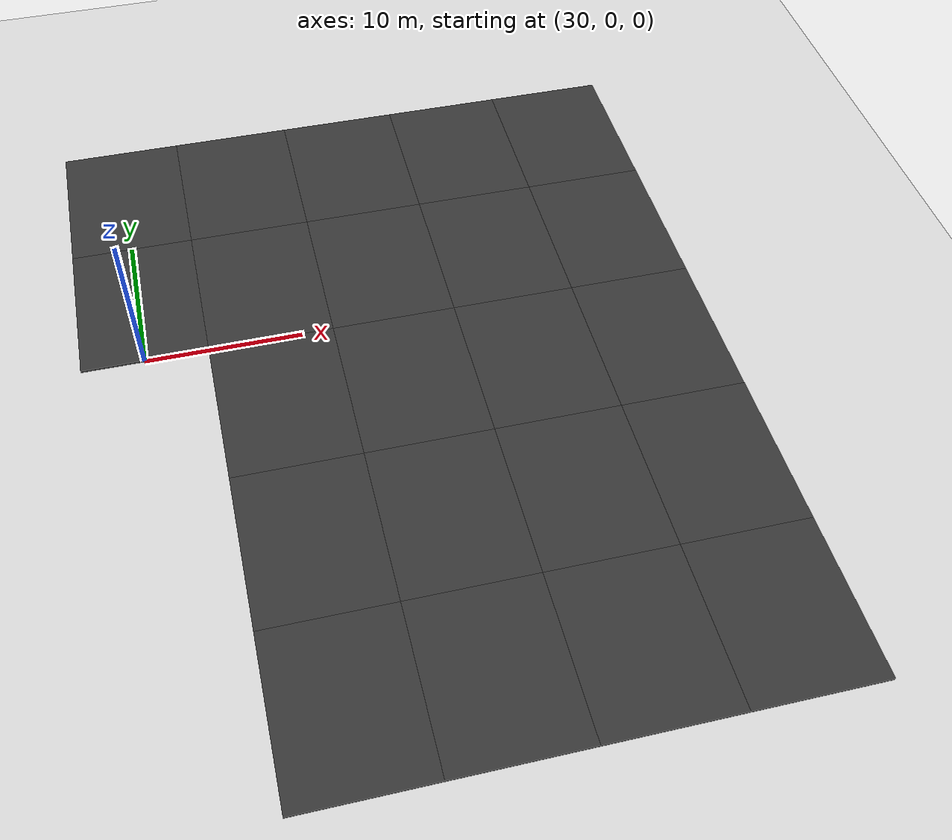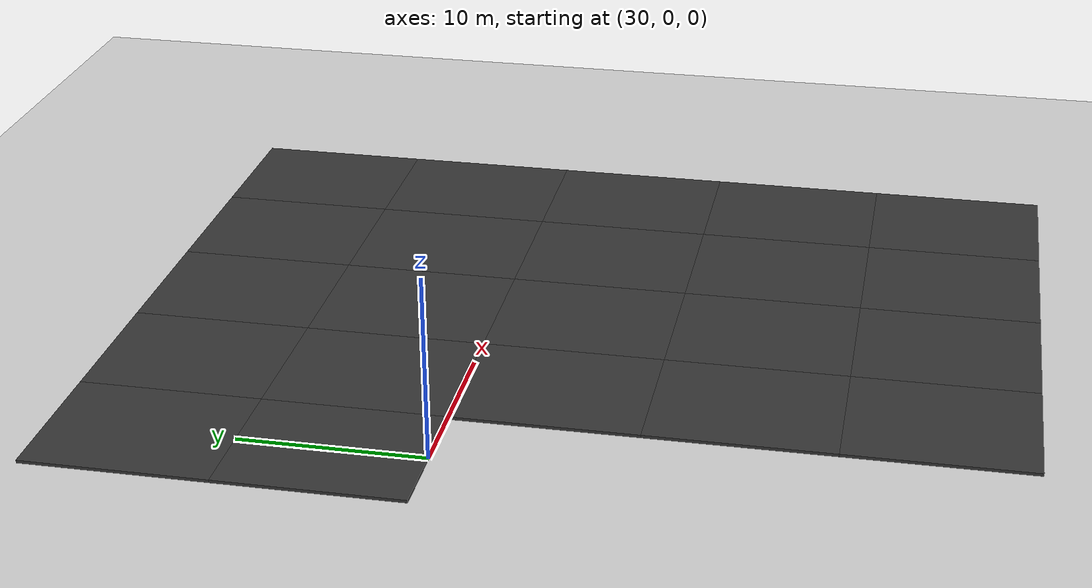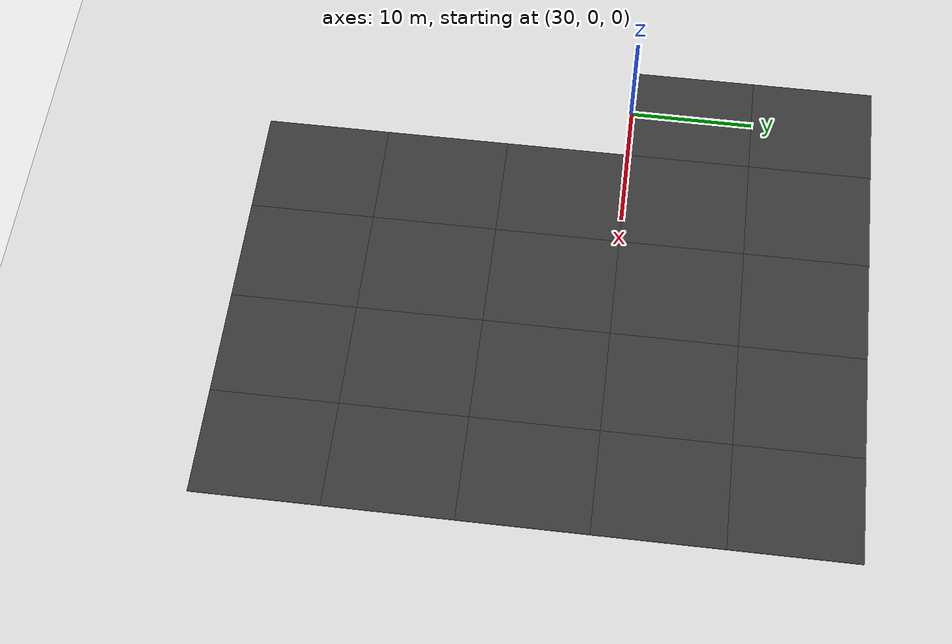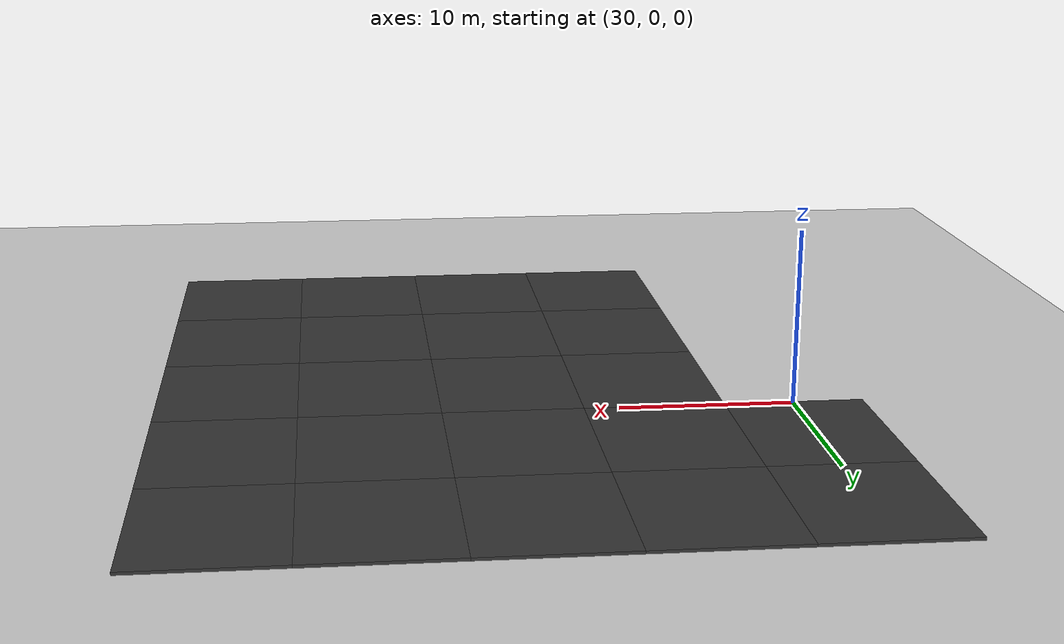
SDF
<sdf version="1.7">
 <world name="default">
  <model name="ground_plane">
   <static>1</static>
   <link name="link">
    <collision name="collision">
     <geometry><plane><normal>0 0 1</normal><size>100 100</size></plane></geometry>
     <surface>
      <contact><collide_bitmask>65535</collide_bitmask></contact>
      <friction><ode><mu>100</mu><mu2>50</mu2></ode></friction>
     </surface>
    </collision>
    <visual name="visual">
     <cast_shadows>0</cast_shadows>
     <geometry><plane><normal>0 0 1</normal><size>100 100</size></plane></geometry>
     <material>
      <script><uri>file://media/materials/scripts/gazebo.material</uri><name>Gazebo/Grey</name></script>
     </material>
    </visual>
   </link>
  </model>
  <model name="mud_box_1">
   <link name="link">
    <inertial>
     <mass>1</mass>
     <inertia><ixx>1</ixx><ixy>0</ixy><ixz>0</ixz><iyy>1</iyy><iyz>0</iyz><izz>1</izz></inertia>
    </inertial>
    <visual name="visual">
     <cast_shadows>0</cast_shadows>
     <geometry><box><size>8 10 0.2</size></box></geometry>
     <material>
      <script>
       <uri>model://mud_box/materials/scripts</uri>
       <uri>model://mud_box/materials/textures</uri>
       <name>vrc/mud</name>
      </script>
      <shader type="pixel"><normal_map>__default__</normal_map></shader>
      <ambient>0.2 0.2 0.2 1</ambient>
      <diffuse>0.2 0.2 0.2 1</diffuse>
      <specular>0.2 0.2 0.2 1</specular>
      <emissive>0 0 0 1</emissive>
     </material>
    </visual>
    <collision name="collision">
     <geometry><box><size>8 10 0.2</size></box></geometry>
     <surface>
      <friction>
       <ode><mu>1</mu><mu2>1</mu2><fdir1>0 0 0</fdir1><slip1>0</slip1><slip2>0</slip2></ode>
       <torsional>
        <coefficient>1</coefficient>
        <patch_radius>0</patch_radius>
        <surface_radius>0</surface_radius>
        <use_patch_radius>1</use_patch_radius>
        <ode><slip>0</slip></ode>
       </torsional>
      </friction>
      <bounce><restitution_coefficient>0</restitution_coefficient><threshold>1e+06</threshold></bounce>
      <contact>
       <collide_without_contact>0</collide_without_contact>
       <collide_without_contact_bitmask>1</collide_without_contact_bitmask>
       <collide_bitmask>1</collide_bitmask>
       <ode>
        <soft_cfm>0</soft_cfm>
        <soft_erp>0.2</soft_erp>
        <kp>1e+13</kp>
        <kd>1</kd>
        <max_vel>0.01</max_vel>
        <min_depth>0</min_depth>
       </ode>
       <bullet>
        <split_impulse>1</split_impulse>
        <split_impulse_penetration_threshold>-0.01</split_impulse_penetration_threshold>
        <soft_cfm>0</soft_cfm>
        <soft_erp>0.2</soft_erp>
        <kp>1e+13</kp>
        <kd>1</kd>
       </bullet>
      </contact>
     </surface>
    </collision>
   </link>
   <static>1</static>
   <pose>46 -25 0 0 -0 0</pose>
  </model>
  <model name="mud_box_2">
   <link name="link">
    <inertial>
     <mass>1</mass>
     <inertia><ixx>1</ixx><ixy>0</ixy><ixz>0</ixz><iyy>1</iyy><iyz>0</iyz><izz>1</izz></inertia>
    </inertial>
    <visual name="visual">
     <cast_shadows>0</cast_shadows>
     <geometry><box><size>8 10 0.2</size></box></geometry>
     <material>
      <script>
       <uri>model://mud_box/materials/scripts</uri>
       <uri>model://mud_box/materials/textures</uri>
       <name>vrc/mud</name>
      </script>
      <shader type="pixel"><normal_map>__default__</normal_map></shader>
      <ambient>0.2 0.2 0.2 1</ambient>
      <diffuse>0.2 0.2 0.2 1</diffuse>
      <specular>0.2 0.2 0.2 1</specular>
      <emissive>0 0 0 1</emissive>
     </material>
    </visual>
    <collision name="collision">
     <geometry><box><size>8 10 0.2</size></box></geometry>
     <surface>
      <friction>
       <ode><mu>1</mu><mu2>1</mu2><fdir1>0 0 0</fdir1><slip1>0</slip1><slip2>0</slip2></ode>
       <torsional>
        <coefficient>1</coefficient>
        <patch_radius>0</patch_radius>
        <surface_radius>0</surface_radius>
        <use_patch_radius>1</use_patch_radius>
        <ode><slip>0</slip></ode>
       </torsional>
      </friction>
      <bounce><restitution_coefficient>0</restitution_coefficient><threshold>1e+06</threshold></bounce>
      <contact>
       <collide_without_contact>0</collide_without_contact>
       <collide_without_contact_bitmask>1</collide_without_contact_bitmask>
       <collide_bitmask>1</collide_bitmask>
       <ode>
        <soft_cfm>0</soft_cfm>
        <soft_erp>0.2</soft_erp>
        <kp>1e+13</kp>
        <kd>1</kd>
        <max_vel>0.01</max_vel>
        <min_depth>0</min_depth>
       </ode>
       <bullet>
        <split_impulse>1</split_impulse>
        <split_impulse_penetration_threshold>-0.01</split_impulse_penetration_threshold>
        <soft_cfm>0</soft_cfm>
        <soft_erp>0.2</soft_erp>
        <kp>1e+13</kp>
        <kd>1</kd>
       </bullet>
      </contact>
     </surface>
    </collision>
   </link>
   <static>1</static>
   <pose>46 -15 0 0 -0 0</pose>
  </model>
  <model name="mud_box_3">
   <link name="link">
    <inertial>
     <mass>1</mass>
     <inertia><ixx>1</ixx><ixy>0</ixy><ixz>0</ixz><iyy>1</iyy><iyz>0</iyz><izz>1</izz></inertia>
    </inertial>
    <visual name="visual">
     <cast_shadows>0</cast_shadows>
     <geometry><box><size>8 10 0.2</size></box></geometry>
     <material>
      <script>
       <uri>model://mud_box/materials/scripts</uri>
       <uri>model://mud_box/materials/textures</uri>
       <name>vrc/mud</name>
      </script>
      <shader type="pixel"><normal_map>__default__</normal_map></shader>
      <ambient>0.2 0.2 0.2 1</ambient>
      <diffuse>0.2 0.2 0.2 1</diffuse>
      <specular>0.2 0.2 0.2 1</specular>
      <emissive>0 0 0 1</emissive>
     </material>
    </visual>
    <collision name="collision">
     <geometry><box><size>8 10 0.2</size></box></geometry>
     <surface>
      <friction>
       <ode><mu>1</mu><mu2>1</mu2><fdir1>0 0 0</fdir1><slip1>0</slip1><slip2>0</slip2></ode>
       <torsional>
        <coefficient>1</coefficient>
        <patch_radius>0</patch_radius>
        <surface_radius>0</surface_radius>
        <use_patch_radius>1</use_patch_radius>
        <ode><slip>0</slip></ode>
       </torsional>
      </friction>
      <bounce><restitution_coefficient>0</restitution_coefficient><threshold>1e+06</threshold></bounce>
      <contact>
       <collide_without_contact>0</collide_without_contact>
       <collide_without_contact_bitmask>1</collide_without_contact_bitmask>
       <collide_bitmask>1</collide_bitmask>
       <ode>
        <soft_cfm>0</soft_cfm>
        <soft_erp>0.2</soft_erp>
        <kp>1e+13</kp>
        <kd>1</kd>
        <max_vel>0.01</max_vel>
        <min_depth>0</min_depth>
       </ode>
       <bullet>
        <split_impulse>1</split_impulse>
        <split_impulse_penetration_threshold>-0.01</split_impulse_penetration_threshold>
        <soft_cfm>0</soft_cfm>
        <soft_erp>0.2</soft_erp>
        <kp>1e+13</kp>
        <kd>1</kd>
       </bullet>
      </contact>
     </surface>
    </collision>
   </link>
   <static>1</static>
   <pose>46 -5 0 0 -0 0</pose>
  </model>
  <model name="mud_box_6">
   <link name="link">
    <inertial>
     <mass>1</mass>
     <inertia><ixx>1</ixx><ixy>0</ixy><ixz>0</ixz><iyy>1</iyy><iyz>0</iyz><izz>1</izz></inertia>
    </inertial>
    <visual name="visual">
     <cast_shadows>0</cast_shadows>
     <geometry><box><size>8 10 0.2</size></box></geometry>
     <material>
      <script>
       <uri>model://mud_box/materials/scripts</uri>
       <uri>model://mud_box/materials/textures</uri>
       <name>vrc/mud</name>
      </script>
      <shader type="pixel"><normal_map>__default__</normal_map></shader>
      <ambient>0.2 0.2 0.2 1</ambient>
      <diffuse>0.2 0.2 0.2 1</diffuse>
      <specular>0.2 0.2 0.2 1</specular>
      <emissive>0 0 0 1</emissive>
     </material>
    </visual>
    <collision name="collision">
     <geometry><box><size>8 10 0.2</size></box></geometry>
     <surface>
      <friction>
       <ode><mu>1</mu><mu2>1</mu2><fdir1>0 0 0</fdir1><slip1>0</slip1><slip2>0</slip2></ode>
       <torsional>
        <coefficient>1</coefficient>
        <patch_radius>0</patch_radius>
        <surface_radius>0</surface_radius>
        <use_patch_radius>1</use_patch_radius>
        <ode><slip>0</slip></ode>
       </torsional>
      </friction>
      <bounce><restitution_coefficient>0</restitution_coefficient><threshold>1e+06</threshold></bounce>
      <contact>
       <collide_without_contact>0</collide_without_contact>
       <collide_without_contact_bitmask>1</collide_without_contact_bitmask>
       <collide_bitmask>1</collide_bitmask>
       <ode>
        <soft_cfm>0</soft_cfm>
        <soft_erp>0.2</soft_erp>
        <kp>1e+13</kp>
        <kd>1</kd>
        <max_vel>0.01</max_vel>
        <min_depth>0</min_depth>
       </ode>
       <bullet>
        <split_impulse>1</split_impulse>
        <split_impulse_penetration_threshold>-0.01</split_impulse_penetration_threshold>
        <soft_cfm>0</soft_cfm>
        <soft_erp>0.2</soft_erp>
        <kp>1e+13</kp>
        <kd>1</kd>
       </bullet>
      </contact>
     </surface>
    </collision>
   </link>
   <static>1</static>
   <pose>38 -25 0 0 -0 0</pose>
  </model>
  <model name="mud_box_7">
   <link name="link">
    <inertial>
     <mass>1</mass>
     <inertia><ixx>1</ixx><ixy>0</ixy><ixz>0</ixz><iyy>1</iyy><iyz>0</iyz><izz>1</izz></inertia>
    </inertial>
    <visual name="visual">
     <cast_shadows>0</cast_shadows>
     <geometry><box><size>8 10 0.2</size></box></geometry>
     <material>
      <script>
       <uri>model://mud_box/materials/scripts</uri>
       <uri>model://mud_box/materials/textures</uri>
       <name>vrc/mud</name>
      </script>
      <shader type="pixel"><normal_map>__default__</normal_map></shader>
      <ambient>0.2 0.2 0.2 1</ambient>
      <diffuse>0.2 0.2 0.2 1</diffuse>
      <specular>0.2 0.2 0.2 1</specular>
      <emissive>0 0 0 1</emissive>
     </material>
    </visual>
    <collision name="collision">
     <geometry><box><size>8 10 0.2</size></box></geometry>
     <surface>
      <friction>
       <ode><mu>1</mu><mu2>1</mu2><fdir1>0 0 0</fdir1><slip1>0</slip1><slip2>0</slip2></ode>
       <torsional>
        <coefficient>1</coefficient>
        <patch_radius>0</patch_radius>
        <surface_radius>0</surface_radius>
        <use_patch_radius>1</use_patch_radius>
        <ode><slip>0</slip></ode>
       </torsional>
      </friction>
      <bounce><restitution_coefficient>0</restitution_coefficient><threshold>1e+06</threshold></bounce>
      <contact>
       <collide_without_contact>0</collide_without_contact>
       <collide_without_contact_bitmask>1</collide_without_contact_bitmask>
       <collide_bitmask>1</collide_bitmask>
       <ode>
        <soft_cfm>0</soft_cfm>
        <soft_erp>0.2</soft_erp>
        <kp>1e+13</kp>
        <kd>1</kd>
        <max_vel>0.01</max_vel>
        <min_depth>0</min_depth>
       </ode>
       <bullet>
        <split_impulse>1</split_impulse>
        <split_impulse_penetration_threshold>-0.01</split_impulse_penetration_threshold>
        <soft_cfm>0</soft_cfm>
        <soft_erp>0.2</soft_erp>
        <kp>1e+13</kp>
        <kd>1</kd>
       </bullet>
      </contact>
     </surface>
    </collision>
   </link>
   <static>1</static>
   <pose>38 -15 0 0 -0 0</pose>
  </model>
  <model name="mud_box_8">
   <link name="link">
    <inertial>
     <mass>1</mass>
     <inertia><ixx>1</ixx><ixy>0</ixy><ixz>0</ixz><iyy>1</iyy><iyz>0</iyz><izz>1</izz></inertia>
    </inertial>
    <visual name="visual">
     <cast_shadows>0</cast_shadows>
     <geometry><box><size>8 10 0.2</size></box></geometry>
     <material>
      <script>
       <uri>model://mud_box/materials/scripts</uri>
       <uri>model://mud_box/materials/textures</uri>
       <name>vrc/mud</name>
      </script>
      <shader type="pixel"><normal_map>__default__</normal_map></shader>
      <ambient>0.2 0.2 0.2 1</ambient>
      <diffuse>0.2 0.2 0.2 1</diffuse>
      <specular>0.2 0.2 0.2 1</specular>
      <emissive>0 0 0 1</emissive>
     </material>
    </visual>
    <collision name="collision">
     <geometry><box><size>8 10 0.2</size></box></geometry>
     <surface>
      <friction>
       <ode><mu>1</mu><mu2>1</mu2><fdir1>0 0 0</fdir1><slip1>0</slip1><slip2>0</slip2></ode>
       <torsional>
        <coefficient>1</coefficient>
        <patch_radius>0</patch_radius>
        <surface_radius>0</surface_radius>
        <use_patch_radius>1</use_patch_radius>
        <ode><slip>0</slip></ode>
       </torsional>
      </friction>
      <bounce><restitution_coefficient>0</restitution_coefficient><threshold>1e+06</threshold></bounce>
      <contact>
       <collide_without_contact>0</collide_without_contact>
       <collide_without_contact_bitmask>1</collide_without_contact_bitmask>
       <collide_bitmask>1</collide_bitmask>
       <ode>
        <soft_cfm>0</soft_cfm>
        <soft_erp>0.2</soft_erp>
        <kp>1e+13</kp>
        <kd>1</kd>
        <max_vel>0.01</max_vel>
        <min_depth>0</min_depth>
       </ode>
       <bullet>
        <split_impulse>1</split_impulse>
        <split_impulse_penetration_threshold>-0.01</split_impulse_penetration_threshold>
        <soft_cfm>0</soft_cfm>
        <soft_erp>0.2</soft_erp>
        <kp>1e+13</kp>
        <kd>1</kd>
       </bullet>
      </contact>
     </surface>
    </collision>
   </link>
   <static>1</static>
   <pose>38 -5 0 0 -0 0</pose>
  </model>
  <model name="mud_box_94">
   <link name="link">
    <inertial>
     <mass>1</mass>
     <inertia><ixx>1</ixx><ixy>0</ixy><ixz>0</ixz><iyy>1</iyy><iyz>0</iyz><izz>1</izz></inertia>
    </inertial>
    <visual name="visual">
     <cast_shadows>0</cast_shadows>
     <geometry><box><size>8 10 0.2</size></box></geometry>
     <material>
      <script>
       <uri>model://mud_box/materials/scripts</uri>
       <uri>model://mud_box/materials/textures</uri>
       <name>vrc/mud</name>
      </script>
      <shader type="pixel"><normal_map>__default__</normal_map></shader>
      <ambient>0.2 0.2 0.2 1</ambient>
      <diffuse>0.2 0.2 0.2 1</diffuse>
      <specular>0.2 0.2 0.2 1</specular>
      <emissive>0 0 0 1</emissive>
     </material>
    </visual>
    <collision name="collision">
     <geometry><box><size>8 10 0.2</size></box></geometry>
     <surface>
      <friction>
       <ode><mu>1</mu><mu2>1</mu2><fdir1>0 0 0</fdir1><slip1>0</slip1><slip2>0</slip2></ode>
       <torsional>
        <coefficient>1</coefficient>
        <patch_radius>0</patch_radius>
        <surface_radius>0</surface_radius>
        <use_patch_radius>1</use_patch_radius>
        <ode><slip>0</slip></ode>
       </torsional>
      </friction>
      <bounce><restitution_coefficient>0</restitution_coefficient><threshold>1e+06</threshold></bounce>
      <contact>
       <collide_without_contact>0</collide_without_contact>
       <collide_without_contact_bitmask>1</collide_without_contact_bitmask>
       <collide_bitmask>1</collide_bitmask>
       <ode>
        <soft_cfm>0</soft_cfm>
        <soft_erp>0.2</soft_erp>
        <kp>1e+13</kp>
        <kd>1</kd>
        <max_vel>0.01</max_vel>
        <min_depth>0</min_depth>
       </ode>
       <bullet>
        <split_impulse>1</split_impulse>
        <split_impulse_penetration_threshold>-0.01</split_impulse_penetration_threshold>
        <soft_cfm>0</soft_cfm>
        <soft_erp>0.2</soft_erp>
        <kp>1e+13</kp>
        <kd>1</kd>
       </bullet>
      </contact>
     </surface>
    </collision>
   </link>
   <static>1</static>
   <pose>30 5 0 0 -0 0</pose>
  </model>
  <model name="mud_box_95">
   <link name="link">
    <inertial>
     <mass>1</mass>
     <inertia><ixx>1</ixx><ixy>0</ixy><ixz>0</ixz><iyy>1</iyy><iyz>0</iyz><izz>1</izz></inertia>
    </inertial>
    <visual name="visual">
     <cast_shadows>0</cast_shadows>
     <geometry><box><size>8 10 0.2</size></box></geometry>
     <material>
      <script>
       <uri>model://mud_box/materials/scripts</uri>
       <uri>model://mud_box/materials/textures</uri>
       <name>vrc/mud</name>
      </script>
      <shader type="pixel"><normal_map>__default__</normal_map></shader>
      <ambient>0.2 0.2 0.2 1</ambient>
      <diffuse>0.2 0.2 0.2 1</diffuse>
      <specular>0.2 0.2 0.2 1</specular>
      <emissive>0 0 0 1</emissive>
     </material>
    </visual>
    <collision name="collision">
     <geometry><box><size>8 10 0.2</size></box></geometry>
     <surface>
      <friction>
       <ode><mu>1</mu><mu2>1</mu2><fdir1>0 0 0</fdir1><slip1>0</slip1><slip2>0</slip2></ode>
       <torsional>
        <coefficient>1</coefficient>
        <patch_radius>0</patch_radius>
        <surface_radius>0</surface_radius>
        <use_patch_radius>1</use_patch_radius>
        <ode><slip>0</slip></ode>
       </torsional>
      </friction>
      <bounce><restitution_coefficient>0</restitution_coefficient><threshold>1e+06</threshold></bounce>
      <contact>
       <collide_without_contact>0</collide_without_contact>
       <collide_without_contact_bitmask>1</collide_without_contact_bitmask>
       <collide_bitmask>1</collide_bitmask>
       <ode>
        <soft_cfm>0</soft_cfm>
        <soft_erp>0.2</soft_erp>
        <kp>1e+13</kp>
        <kd>1</kd>
        <max_vel>0.01</max_vel>
        <min_depth>0</min_depth>
       </ode>
       <bullet>
        <split_impulse>1</split_impulse>
        <split_impulse_penetration_threshold>-0.01</split_impulse_penetration_threshold>
        <soft_cfm>0</soft_cfm>
        <soft_erp>0.2</soft_erp>
        <kp>1e+13</kp>
        <kd>1</kd>
       </bullet>
      </contact>
     </surface>
    </collision>
   </link>
   <static>1</static>
   <pose>38 5 0 0 -0 0</pose>
  </model>
  <model name="mud_box_96">
   <link name="link">
    <inertial>
     <mass>1</mass>
     <inertia><ixx>1</ixx><ixy>0</ixy><ixz>0</ixz><iyy>1</iyy><iyz>0</iyz><izz>1</izz></inertia>
    </inertial>
    <visual name="visual">
     <cast_shadows>0</cast_shadows>
     <geometry><box><size>8 10 0.2</size></box></geometry>
     <material>
      <script>
       <uri>model://mud_box/materials/scripts</uri>
       <uri>model://mud_box/materials/textures</uri>
       <name>vrc/mud</name>
      </script>
      <shader type="pixel"><normal_map>__default__</normal_map></shader>
      <ambient>0.2 0.2 0.2 1</ambient>
      <diffuse>0.2 0.2 0.2 1</diffuse>
      <specular>0.2 0.2 0.2 1</specular>
      <emissive>0 0 0 1</emissive>
     </material>
    </visual>
    <collision name="collision">
     <geometry><box><size>8 10 0.2</size></box></geometry>
     <surface>
      <friction>
       <ode><mu>1</mu><mu2>1</mu2><fdir1>0 0 0</fdir1><slip1>0</slip1><slip2>0</slip2></ode>
       <torsional>
        <coefficient>1</coefficient>
        <patch_radius>0</patch_radius>
        <surface_radius>0</surface_radius>
        <use_patch_radius>1</use_patch_radius>
        <ode><slip>0</slip></ode>
       </torsional>
      </friction>
      <bounce><restitution_coefficient>0</restitution_coefficient><threshold>1e+06</threshold></bounce>
      <contact>
       <collide_without_contact>0</collide_without_contact>
       <collide_without_contact_bitmask>1</collide_without_contact_bitmask>
       <collide_bitmask>1</collide_bitmask>
       <ode>
        <soft_cfm>0</soft_cfm>
        <soft_erp>0.2</soft_erp>
        <kp>1e+13</kp>
        <kd>1</kd>
        <max_vel>0.01</max_vel>
        <min_depth>0</min_depth>
       </ode>
       <bullet>
        <split_impulse>1</split_impulse>
        <split_impulse_penetration_threshold>-0.01</split_impulse_penetration_threshold>
        <soft_cfm>0</soft_cfm>
        <soft_erp>0.2</soft_erp>
        <kp>1e+13</kp>
        <kd>1</kd>
       </bullet>
      </contact>
     </surface>
    </collision>
   </link>
   <static>1</static>
   <pose>46 5 0 0 -0 0</pose>
  </model>
  <model name="mud_box_97">
   <link name="link">
    <inertial>
     <mass>1</mass>
     <inertia><ixx>1</ixx><ixy>0</ixy><ixz>0</ixz><iyy>1</iyy><iyz>0</iyz><izz>1</izz></inertia>
    </inertial>
    <visual name="visual">
     <cast_shadows>0</cast_shadows>
     <geometry><box><size>8 10 0.2</size></box></geometry>
     <material>
      <script>
       <uri>model://mud_box/materials/scripts</uri>
       <uri>model://mud_box/materials/textures</uri>
       <name>vrc/mud</name>
      </script>
      <shader type="pixel"><normal_map>__default__</normal_map></shader>
      <ambient>0.2 0.2 0.2 1</ambient>
      <diffuse>0.2 0.2 0.2 1</diffuse>
      <specular>0.2 0.2 0.2 1</specular>
      <emissive>0 0 0 1</emissive>
     </material>
    </visual>
    <collision name="collision">
     <geometry><box><size>8 10 0.2</size></box></geometry>
     <surface>
      <friction>
       <ode><mu>1</mu><mu2>1</mu2><fdir1>0 0 0</fdir1><slip1>0</slip1><slip2>0</slip2></ode>
       <torsional>
        <coefficient>1</coefficient>
        <patch_radius>0</patch_radius>
        <surface_radius>0</surface_radius>
        <use_patch_radius>1</use_patch_radius>
        <ode><slip>0</slip></ode>
       </torsional>
      </friction>
      <bounce><restitution_coefficient>0</restitution_coefficient><threshold>1e+06</threshold></bounce>
      <contact>
       <collide_without_contact>0</collide_without_contact>
       <collide_without_contact_bitmask>1</collide_without_contact_bitmask>
       <collide_bitmask>1</collide_bitmask>
       <ode>
        <soft_cfm>0</soft_cfm>
        <soft_erp>0.2</soft_erp>
        <kp>1e+13</kp>
        <kd>1</kd>
        <max_vel>0.01</max_vel>
        <min_depth>0</min_depth>
       </ode>
       <bullet>
        <split_impulse>1</split_impulse>
        <split_impulse_penetration_threshold>-0.01</split_impulse_penetration_threshold>
        <soft_cfm>0</soft_cfm>
        <soft_erp>0.2</soft_erp>
        <kp>1e+13</kp>
        <kd>1</kd>
       </bullet>
      </contact>
     </surface>
    </collision>
   </link>
   <static>1</static>
   <pose>54 5 0 0 -0 0</pose>
  </model>
  <model name="mud_box_98">
   <link name="link">
    <inertial>
     <mass>1</mass>
     <inertia><ixx>1</ixx><ixy>0</ixy><ixz>0</ixz><iyy>1</iyy><iyz>0</iyz><izz>1</izz></inertia>
    </inertial>
    <visual name="visual">
     <cast_shadows>0</cast_shadows>
     <geometry><box><size>8 10 0.2</size></box></geometry>
     <material>
      <script>
       <uri>model://mud_box/materials/scripts</uri>
       <uri>model://mud_box/materials/textures</uri>
       <name>vrc/mud</name>
      </script>
      <shader type="pixel"><normal_map>__default__</normal_map></shader>
      <ambient>0.2 0.2 0.2 1</ambient>
      <diffuse>0.2 0.2 0.2 1</diffuse>
      <specular>0.2 0.2 0.2 1</specular>
      <emissive>0 0 0 1</emissive>
     </material>
    </visual>
    <collision name="collision">
     <geometry><box><size>8 10 0.2</size></box></geometry>
     <surface>
      <friction>
       <ode><mu>1</mu><mu2>1</mu2><fdir1>0 0 0</fdir1><slip1>0</slip1><slip2>0</slip2></ode>
       <torsional>
        <coefficient>1</coefficient>
        <patch_radius>0</patch_radius>
        <surface_radius>0</surface_radius>
        <use_patch_radius>1</use_patch_radius>
        <ode><slip>0</slip></ode>
       </torsional>
      </friction>
      <bounce><restitution_coefficient>0</restitution_coefficient><threshold>1e+06</threshold></bounce>
      <contact>
       <collide_without_contact>0</collide_without_contact>
       <collide_without_contact_bitmask>1</collide_without_contact_bitmask>
       <collide_bitmask>1</collide_bitmask>
       <ode>
        <soft_cfm>0</soft_cfm>
        <soft_erp>0.2</soft_erp>
        <kp>1e+13</kp>
        <kd>1</kd>
        <max_vel>0.01</max_vel>
        <min_depth>0</min_depth>
       </ode>
       <bullet>
        <split_impulse>1</split_impulse>
        <split_impulse_penetration_threshold>-0.01</split_impulse_penetration_threshold>
        <soft_cfm>0</soft_cfm>
        <soft_erp>0.2</soft_erp>
        <kp>1e+13</kp>
        <kd>1</kd>
       </bullet>
      </contact>
     </surface>
    </collision>
   </link>
   <static>1</static>
   <pose>54 -5 0 0 -0 0</pose>
  </model>
  <model name="mud_box_99">
   <link name="link">
    <inertial>
     <mass>1</mass>
     <inertia><ixx>1</ixx><ixy>0</ixy><ixz>0</ixz><iyy>1</iyy><iyz>0</iyz><izz>1</izz></inertia>
    </inertial>
    <visual name="visual">
     <cast_shadows>0</cast_shadows>
     <geometry><box><size>8 10 0.2</size></box></geometry>
     <material>
      <script>
       <uri>model://mud_box/materials/scripts</uri>
       <uri>model://mud_box/materials/textures</uri>
       <name>vrc/mud</name>
      </script>
      <shader type="pixel"><normal_map>__default__</normal_map></shader>
      <ambient>0.2 0.2 0.2 1</ambient>
      <diffuse>0.2 0.2 0.2 1</diffuse>
      <specular>0.2 0.2 0.2 1</specular>
      <emissive>0 0 0 1</emissive>
     </material>
    </visual>
    <collision name="collision">
     <geometry><box><size>8 10 0.2</size></box></geometry>
     <surface>
      <friction>
       <ode><mu>1</mu><mu2>1</mu2><fdir1>0 0 0</fdir1><slip1>0</slip1><slip2>0</slip2></ode>
       <torsional>
        <coefficient>1</coefficient>
        <patch_radius>0</patch_radius>
        <surface_radius>0</surface_radius>
        <use_patch_radius>1</use_patch_radius>
        <ode><slip>0</slip></ode>
       </torsional>
      </friction>
      <bounce><restitution_coefficient>0</restitution_coefficient><threshold>1e+06</threshold></bounce>
      <contact>
       <collide_without_contact>0</collide_without_contact>
       <collide_without_contact_bitmask>1</collide_without_contact_bitmask>
       <collide_bitmask>1</collide_bitmask>
       <ode>
        <soft_cfm>0</soft_cfm>
        <soft_erp>0.2</soft_erp>
        <kp>1e+13</kp>
        <kd>1</kd>
        <max_vel>0.01</max_vel>
        <min_depth>0</min_depth>
       </ode>
       <bullet>
        <split_impulse>1</split_impulse>
        <split_impulse_penetration_threshold>-0.01</split_impulse_penetration_threshold>
        <soft_cfm>0</soft_cfm>
        <soft_erp>0.2</soft_erp>
        <kp>1e+13</kp>
        <kd>1</kd>
       </bullet>
      </contact>
     </surface>
    </collision>
   </link>
   <static>1</static>
   <pose>54 -15 0 0 -0 0</pose>
  </model>
  <model name="mud_box_100">
   <link name="link">
    <inertial>
     <mass>1</mass>
     <inertia><ixx>1</ixx><ixy>0</ixy><ixz>0</ixz><iyy>1</iyy><iyz>0</iyz><izz>1</izz></inertia>
    </inertial>
    <visual name="visual">
     <cast_shadows>0</cast_shadows>
     <geometry><box><size>8 10 0.2</size></box></geometry>
     <material>
      <script>
       <uri>model://mud_box/materials/scripts</uri>
       <uri>model://mud_box/materials/textures</uri>
       <name>vrc/mud</name>
      </script>
      <shader type="pixel"><normal_map>__default__</normal_map></shader>
      <ambient>0.2 0.2 0.2 1</ambient>
      <diffuse>0.2 0.2 0.2 1</diffuse>
      <specular>0.2 0.2 0.2 1</specular>
      <emissive>0 0 0 1</emissive>
     </material>
    </visual>
    <collision name="collision">
     <geometry><box><size>8 10 0.2</size></box></geometry>
     <surface>
      <friction>
       <ode><mu>1</mu><mu2>1</mu2><fdir1>0 0 0</fdir1><slip1>0</slip1><slip2>0</slip2></ode>
       <torsional>
        <coefficient>1</coefficient>
        <patch_radius>0</patch_radius>
        <surface_radius>0</surface_radius>
        <use_patch_radius>1</use_patch_radius>
        <ode><slip>0</slip></ode>
       </torsional>
      </friction>
      <bounce><restitution_coefficient>0</restitution_coefficient><threshold>1e+06</threshold></bounce>
      <contact>
       <collide_without_contact>0</collide_without_contact>
       <collide_without_contact_bitmask>1</collide_without_contact_bitmask>
       <collide_bitmask>1</collide_bitmask>
       <ode>
        <soft_cfm>0</soft_cfm>
        <soft_erp>0.2</soft_erp>
        <kp>1e+13</kp>
        <kd>1</kd>
        <max_vel>0.01</max_vel>
        <min_depth>0</min_depth>
       </ode>
       <bullet>
        <split_impulse>1</split_impulse>
        <split_impulse_penetration_threshold>-0.01</split_impulse_penetration_threshold>
        <soft_cfm>0</soft_cfm>
        <soft_erp>0.2</soft_erp>
        <kp>1e+13</kp>
        <kd>1</kd>
       </bullet>
      </contact>
     </surface>
    </collision>
   </link>
   <static>1</static>
   <pose>54 -25 0 0 -0 0</pose>
  </model>
  <model name="mud_box_107">
   <link name="link">
    <inertial>
     <mass>1</mass>
     <inertia><ixx>1</ixx><ixy>0</ixy><ixz>0</ixz><iyy>1</iyy><iyz>0</iyz><izz>1</izz></inertia>
    </inertial>
    <visual name="visual">
     <cast_shadows>0</cast_shadows>
     <geometry><box><size>8 10 0.2</size></box></geometry>
     <material>
      <script>
       <uri>model://mud_box/materials/scripts</uri>
       <uri>model://mud_box/materials/textures</uri>
       <name>vrc/mud</name>
      </script>
      <shader type="pixel"><normal_map>__default__</normal_map></shader>
      <ambient>0.2 0.2 0.2 1</ambient>
      <diffuse>0.2 0.2 0.2 1</diffuse>
      <specular>0.2 0.2 0.2 1</specular>
      <emissive>0 0 0 1</emissive>
     </material>
    </visual>
    <collision name="collision">
     <geometry><box><size>8 10 0.2</size></box></geometry>
     <surface>
      <friction>
       <ode><mu>1</mu><mu2>1</mu2><fdir1>0 0 0</fdir1><slip1>0</slip1><slip2>0</slip2></ode>
       <torsional>
        <coefficient>1</coefficient>
        <patch_radius>0</patch_radius>
        <surface_radius>0</surface_radius>
        <use_patch_radius>1</use_patch_radius>
        <ode><slip>0</slip></ode>
       </torsional>
      </friction>
      <bounce><restitution_coefficient>0</restitution_coefficient><threshold>1e+06</threshold></bounce>
      <contact>
       <collide_without_contact>0</collide_without_contact>
       <collide_without_contact_bitmask>1</collide_without_contact_bitmask>
       <collide_bitmask>1</collide_bitmask>
       <ode>
        <soft_cfm>0</soft_cfm>
        <soft_erp>0.2</soft_erp>
        <kp>1e+13</kp>
        <kd>1</kd>
        <max_vel>0.01</max_vel>
        <min_depth>0</min_depth>
       </ode>
       <bullet>
        <split_impulse>1</split_impulse>
        <split_impulse_penetration_threshold>-0.01</split_impulse_penetration_threshold>
        <soft_cfm>0</soft_cfm>
        <soft_erp>0.2</soft_erp>
        <kp>1e+13</kp>
        <kd>1</kd>
       </bullet>
      </contact>
     </surface>
    </collision>
   </link>
   <static>1</static>
   <pose>62 -25 0 0 -0 0</pose>
  </model>
  <model name="mud_box_108">
   <link name="link">
    <inertial>
     <mass>1</mass>
     <inertia><ixx>1</ixx><ixy>0</ixy><ixz>0</ixz><iyy>1</iyy><iyz>0</iyz><izz>1</izz></inertia>
    </inertial>
    <visual name="visual">
     <cast_shadows>0</cast_shadows>
     <geometry><box><size>8 10 0.2</size></box></geometry>
     <material>
      <script>
       <uri>model://mud_box/materials/scripts</uri>
       <uri>model://mud_box/materials/textures</uri>
       <name>vrc/mud</name>
      </script>
      <shader type="pixel"><normal_map>__default__</normal_map></shader>
      <ambient>0.2 0.2 0.2 1</ambient>
      <diffuse>0.2 0.2 0.2 1</diffuse>
      <specular>0.2 0.2 0.2 1</specular>
      <emissive>0 0 0 1</emissive>
     </material>
    </visual>
    <collision name="collision">
     <geometry><box><size>8 10 0.2</size></box></geometry>
     <surface>
      <friction>
       <ode><mu>1</mu><mu2>1</mu2><fdir1>0 0 0</fdir1><slip1>0</slip1><slip2>0</slip2></ode>
       <torsional>
        <coefficient>1</coefficient>
        <patch_radius>0</patch_radius>
        <surface_radius>0</surface_radius>
        <use_patch_radius>1</use_patch_radius>
        <ode><slip>0</slip></ode>
       </torsional>
      </friction>
      <bounce><restitution_coefficient>0</restitution_coefficient><threshold>1e+06</threshold></bounce>
      <contact>
       <collide_without_contact>0</collide_without_contact>
       <collide_without_contact_bitmask>1</collide_without_contact_bitmask>
       <collide_bitmask>1</collide_bitmask>
       <ode>
        <soft_cfm>0</soft_cfm>
        <soft_erp>0.2</soft_erp>
        <kp>1e+13</kp>
        <kd>1</kd>
        <max_vel>0.01</max_vel>
        <min_depth>0</min_depth>
       </ode>
       <bullet>
        <split_impulse>1</split_impulse>
        <split_impulse_penetration_threshold>-0.01</split_impulse_penetration_threshold>
        <soft_cfm>0</soft_cfm>
        <soft_erp>0.2</soft_erp>
        <kp>1e+13</kp>
        <kd>1</kd>
       </bullet>
      </contact>
     </surface>
    </collision>
   </link>
   <static>1</static>
   <pose>62 -15 0 0 -0 0</pose>
  </model>
  <model name="mud_box_109">
   <link name="link">
    <inertial>
     <mass>1</mass>
     <inertia><ixx>1</ixx><ixy>0</ixy><ixz>0</ixz><iyy>1</iyy><iyz>0</iyz><izz>1</izz></inertia>
    </inertial>
    <visual name="visual">
     <cast_shadows>0</cast_shadows>
     <geometry><box><size>8 10 0.2</size></box></geometry>
     <material>
      <script>
       <uri>model://mud_box/materials/scripts</uri>
       <uri>model://mud_box/materials/textures</uri>
       <name>vrc/mud</name>
      </script>
      <shader type="pixel"><normal_map>__default__</normal_map></shader>
      <ambient>0.2 0.2 0.2 1</ambient>
      <diffuse>0.2 0.2 0.2 1</diffuse>
      <specular>0.2 0.2 0.2 1</specular>
      <emissive>0 0 0 1</emissive>
     </material>
    </visual>
    <collision name="collision">
     <geometry><box><size>8 10 0.2</size></box></geometry>
     <surface>
      <friction>
       <ode><mu>1</mu><mu2>1</mu2><fdir1>0 0 0</fdir1><slip1>0</slip1><slip2>0</slip2></ode>
       <torsional>
        <coefficient>1</coefficient>
        <patch_radius>0</patch_radius>
        <surface_radius>0</surface_radius>
        <use_patch_radius>1</use_patch_radius>
        <ode><slip>0</slip></ode>
       </torsional>
      </friction>
      <bounce><restitution_coefficient>0</restitution_coefficient><threshold>1e+06</threshold></bounce>
      <contact>
       <collide_without_contact>0</collide_without_contact>
       <collide_without_contact_bitmask>1</collide_without_contact_bitmask>
       <collide_bitmask>1</collide_bitmask>
       <ode>
        <soft_cfm>0</soft_cfm>
        <soft_erp>0.2</soft_erp>
        <kp>1e+13</kp>
        <kd>1</kd>
        <max_vel>0.01</max_vel>
        <min_depth>0</min_depth>
       </ode>
       <bullet>
        <split_impulse>1</split_impulse>
        <split_impulse_penetration_threshold>-0.01</split_impulse_penetration_threshold>
        <soft_cfm>0</soft_cfm>
        <soft_erp>0.2</soft_erp>
        <kp>1e+13</kp>
        <kd>1</kd>
       </bullet>
      </contact>
     </surface>
    </collision>
   </link>
   <static>1</static>
   <pose>62 -5 0 0 -0 0</pose>
  </model>
  <model name="mud_box_110">
   <link name="link">
    <inertial>
     <mass>1</mass>
     <inertia><ixx>1</ixx><ixy>0</ixy><ixz>0</ixz><iyy>1</iyy><iyz>0</iyz><izz>1</izz></inertia>
    </inertial>
    <visual name="visual">
     <cast_shadows>0</cast_shadows>
     <geometry><box><size>8 10 0.2</size></box></geometry>
     <material>
      <script>
       <uri>model://mud_box/materials/scripts</uri>
       <uri>model://mud_box/materials/textures</uri>
       <name>vrc/mud</name>
      </script>
      <shader type="pixel"><normal_map>__default__</normal_map></shader>
      <ambient>0.2 0.2 0.2 1</ambient>
      <diffuse>0.2 0.2 0.2 1</diffuse>
      <specular>0.2 0.2 0.2 1</specular>
      <emissive>0 0 0 1</emissive>
     </material>
    </visual>
    <collision name="collision">
     <geometry><box><size>8 10 0.2</size></box></geometry>
     <surface>
      <friction>
       <ode><mu>1</mu><mu2>1</mu2><fdir1>0 0 0</fdir1><slip1>0</slip1><slip2>0</slip2></ode>
       <torsional>
        <coefficient>1</coefficient>
        <patch_radius>0</patch_radius>
        <surface_radius>0</surface_radius>
        <use_patch_radius>1</use_patch_radius>
        <ode><slip>0</slip></ode>
       </torsional>
      </friction>
      <bounce><restitution_coefficient>0</restitution_coefficient><threshold>1e+06</threshold></bounce>
      <contact>
       <collide_without_contact>0</collide_without_contact>
       <collide_without_contact_bitmask>1</collide_without_contact_bitmask>
       <collide_bitmask>1</collide_bitmask>
       <ode>
        <soft_cfm>0</soft_cfm>
        <soft_erp>0.2</soft_erp>
        <kp>1e+13</kp>
        <kd>1</kd>
        <max_vel>0.01</max_vel>
        <min_depth>0</min_depth>
       </ode>
       <bullet>
        <split_impulse>1</split_impulse>
        <split_impulse_penetration_threshold>-0.01</split_impulse_penetration_threshold>
        <soft_cfm>0</soft_cfm>
        <soft_erp>0.2</soft_erp>
        <kp>1e+13</kp>
        <kd>1</kd>
       </bullet>
      </contact>
     </surface>
    </collision>
   </link>
   <static>1</static>
   <pose>62 5 0 0 -0 0</pose>
  </model>
  <model name="mud_box_147">
   <link name="link">
    <inertial>
     <mass>1</mass>
     <inertia><ixx>1</ixx><ixy>0</ixy><ixz>0</ixz><iyy>1</iyy><iyz>0</iyz><izz>1</izz></inertia>
    </inertial>
    <visual name="visual">
     <cast_shadows>0</cast_shadows>
     <geometry><box><size>8 10 0.2</size></box></geometry>
     <material>
      <script>
       <uri>model://mud_box/materials/scripts</uri>
       <uri>model://mud_box/materials/textures</uri>
       <name>vrc/mud</name>
      </script>
      <shader type="pixel"><normal_map>__default__</normal_map></shader>
      <ambient>0.2 0.2 0.2 1</ambient>
      <diffuse>0.2 0.2 0.2 1</diffuse>
      <specular>0.2 0.2 0.2 1</specular>
      <emissive>0 0 0 1</emissive>
     </material>
    </visual>
    <collision name="collision">
     <geometry><box><size>8 10 0.2</size></box></geometry>
     <surface>
      <friction>
       <ode><mu>1</mu><mu2>1</mu2><fdir1>0 0 0</fdir1><slip1>0</slip1><slip2>0</slip2></ode>
       <torsional>
        <coefficient>1</coefficient>
        <patch_radius>0</patch_radius>
        <surface_radius>0</surface_radius>
        <use_patch_radius>1</use_patch_radius>
        <ode><slip>0</slip></ode>
       </torsional>
      </friction>
      <bounce><restitution_coefficient>0</restitution_coefficient><threshold>1e+06</threshold></bounce>
      <contact>
       <collide_without_contact>0</collide_without_contact>
       <collide_without_contact_bitmask>1</collide_without_contact_bitmask>
       <collide_bitmask>1</collide_bitmask>
       <ode>
        <soft_cfm>0</soft_cfm>
        <soft_erp>0.2</soft_erp>
        <kp>1e+13</kp>
        <kd>1</kd>
        <max_vel>0.01</max_vel>
        <min_depth>0</min_depth>
       </ode>
       <bullet>
        <split_impulse>1</split_impulse>
        <split_impulse_penetration_threshold>-0.01</split_impulse_penetration_threshold>
        <soft_cfm>0</soft_cfm>
        <soft_erp>0.2</soft_erp>
        <kp>1e+13</kp>
        <kd>1</kd>
       </bullet>
      </contact>
     </surface>
    </collision>
   </link>
   <static>1</static>
   <pose>30 15 0 0 -0 0</pose>
  </model>
  <model name="mud_box_148">
   <link name="link">
    <inertial>
     <mass>1</mass>
     <inertia><ixx>1</ixx><ixy>0</ixy><ixz>0</ixz><iyy>1</iyy><iyz>0</iyz><izz>1</izz></inertia>
    </inertial>
    <visual name="visual">
     <cast_shadows>0</cast_shadows>
     <geometry><box><size>8 10 0.2</size></box></geometry>
     <material>
      <script>
       <uri>model://mud_box/materials/scripts</uri>
       <uri>model://mud_box/materials/textures</uri>
       <name>vrc/mud</name>
      </script>
      <shader type="pixel"><normal_map>__default__</normal_map></shader>
      <ambient>0.2 0.2 0.2 1</ambient>
      <diffuse>0.2 0.2 0.2 1</diffuse>
      <specular>0.2 0.2 0.2 1</specular>
      <emissive>0 0 0 1</emissive>
     </material>
    </visual>
    <collision name="collision">
     <geometry><box><size>8 10 0.2</size></box></geometry>
     <surface>
      <friction>
       <ode><mu>1</mu><mu2>1</mu2><fdir1>0 0 0</fdir1><slip1>0</slip1><slip2>0</slip2></ode>
       <torsional>
        <coefficient>1</coefficient>
        <patch_radius>0</patch_radius>
        <surface_radius>0</surface_radius>
        <use_patch_radius>1</use_patch_radius>
        <ode><slip>0</slip></ode>
       </torsional>
      </friction>
      <bounce><restitution_coefficient>0</restitution_coefficient><threshold>1e+06</threshold></bounce>
      <contact>
       <collide_without_contact>0</collide_without_contact>
       <collide_without_contact_bitmask>1</collide_without_contact_bitmask>
       <collide_bitmask>1</collide_bitmask>
       <ode>
        <soft_cfm>0</soft_cfm>
        <soft_erp>0.2</soft_erp>
        <kp>1e+13</kp>
        <kd>1</kd>
        <max_vel>0.01</max_vel>
        <min_depth>0</min_depth>
       </ode>
       <bullet>
        <split_impulse>1</split_impulse>
        <split_impulse_penetration_threshold>-0.01</split_impulse_penetration_threshold>
        <soft_cfm>0</soft_cfm>
        <soft_erp>0.2</soft_erp>
        <kp>1e+13</kp>
        <kd>1</kd>
       </bullet>
      </contact>
     </surface>
    </collision>
   </link>
   <static>1</static>
   <pose>38 15 0 0 -0 0</pose>
  </model>
  <model name="mud_box_149">
   <link name="link">
    <inertial>
     <mass>1</mass>
     <inertia><ixx>1</ixx><ixy>0</ixy><ixz>0</ixz><iyy>1</iyy><iyz>0</iyz><izz>1</izz></inertia>
    </inertial>
    <visual name="visual">
     <cast_shadows>0</cast_shadows>
     <geometry><box><size>8 10 0.2</size></box></geometry>
     <material>
      <script>
       <uri>model://mud_box/materials/scripts</uri>
       <uri>model://mud_box/materials/textures</uri>
       <name>vrc/mud</name>
      </script>
      <shader type="pixel"><normal_map>__default__</normal_map></shader>
      <ambient>0.2 0.2 0.2 1</ambient>
      <diffuse>0.2 0.2 0.2 1</diffuse>
      <specular>0.2 0.2 0.2 1</specular>
      <emissive>0 0 0 1</emissive>
     </material>
    </visual>
    <collision name="collision">
     <geometry><box><size>8 10 0.2</size></box></geometry>
     <surface>
      <friction>
       <ode><mu>1</mu><mu2>1</mu2><fdir1>0 0 0</fdir1><slip1>0</slip1><slip2>0</slip2></ode>
       <torsional>
        <coefficient>1</coefficient>
        <patch_radius>0</patch_radius>
        <surface_radius>0</surface_radius>
        <use_patch_radius>1</use_patch_radius>
        <ode><slip>0</slip></ode>
       </torsional>
      </friction>
      <bounce><restitution_coefficient>0</restitution_coefficient><threshold>1e+06</threshold></bounce>
      <contact>
       <collide_without_contact>0</collide_without_contact>
       <collide_without_contact_bitmask>1</collide_without_contact_bitmask>
       <collide_bitmask>1</collide_bitmask>
       <ode>
        <soft_cfm>0</soft_cfm>
        <soft_erp>0.2</soft_erp>
        <kp>1e+13</kp>
        <kd>1</kd>
        <max_vel>0.01</max_vel>
        <min_depth>0</min_depth>
       </ode>
       <bullet>
        <split_impulse>1</split_impulse>
        <split_impulse_penetration_threshold>-0.01</split_impulse_penetration_threshold>
        <soft_cfm>0</soft_cfm>
        <soft_erp>0.2</soft_erp>
        <kp>1e+13</kp>
        <kd>1</kd>
       </bullet>
      </contact>
     </surface>
    </collision>
   </link>
   <static>1</static>
   <pose>46 15 0 0 -0 0</pose>
  </model>
  <model name="mud_box_150">
   <link name="link">
    <inertial>
     <mass>1</mass>
     <inertia><ixx>1</ixx><ixy>0</ixy><ixz>0</ixz><iyy>1</iyy><iyz>0</iyz><izz>1</izz></inertia>
    </inertial>
    <visual name="visual">
     <cast_shadows>0</cast_shadows>
     <geometry><box><size>8 10 0.2</size></box></geometry>
     <material>
      <script>
       <uri>model://mud_box/materials/scripts</uri>
       <uri>model://mud_box/materials/textures</uri>
       <name>vrc/mud</name>
      </script>
      <shader type="pixel"><normal_map>__default__</normal_map></shader>
      <ambient>0.2 0.2 0.2 1</ambient>
      <diffuse>0.2 0.2 0.2 1</diffuse>
      <specular>0.2 0.2 0.2 1</specular>
      <emissive>0 0 0 1</emissive>
     </material>
    </visual>
    <collision name="collision">
     <geometry><box><size>8 10 0.2</size></box></geometry>
     <surface>
      <friction>
       <ode><mu>1</mu><mu2>1</mu2><fdir1>0 0 0</fdir1><slip1>0</slip1><slip2>0</slip2></ode>
       <torsional>
        <coefficient>1</coefficient>
        <patch_radius>0</patch_radius>
        <surface_radius>0</surface_radius>
        <use_patch_radius>1</use_patch_radius>
        <ode><slip>0</slip></ode>
       </torsional>
      </friction>
      <bounce><restitution_coefficient>0</restitution_coefficient><threshold>1e+06</threshold></bounce>
      <contact>
       <collide_without_contact>0</collide_without_contact>
       <collide_without_contact_bitmask>1</collide_without_contact_bitmask>
       <collide_bitmask>1</collide_bitmask>
       <ode>
        <soft_cfm>0</soft_cfm>
        <soft_erp>0.2</soft_erp>
        <kp>1e+13</kp>
        <kd>1</kd>
        <max_vel>0.01</max_vel>
        <min_depth>0</min_depth>
       </ode>
       <bullet>
        <split_impulse>1</split_impulse>
        <split_impulse_penetration_threshold>-0.01</split_impulse_penetration_threshold>
        <soft_cfm>0</soft_cfm>
        <soft_erp>0.2</soft_erp>
        <kp>1e+13</kp>
        <kd>1</kd>
       </bullet>
      </contact>
     </surface>
    </collision>
   </link>
   <static>1</static>
   <pose>54 15 0 0 -0 0</pose>
  </model>
  <model name="mud_box_151">
   <link name="link">
    <inertial>
     <mass>1</mass>
     <inertia><ixx>1</ixx><ixy>0</ixy><ixz>0</ixz><iyy>1</iyy><iyz>0</iyz><izz>1</izz></inertia>
    </inertial>
    <visual name="visual">
     <cast_shadows>0</cast_shadows>
     <geometry><box><size>8 10 0.2</size></box></geometry>
     <material>
      <script>
       <uri>model://mud_box/materials/scripts</uri>
       <uri>model://mud_box/materials/textures</uri>
       <name>vrc/mud</name>
      </script>
      <shader type="pixel"><normal_map>__default__</normal_map></shader>
      <ambient>0.2 0.2 0.2 1</ambient>
      <diffuse>0.2 0.2 0.2 1</diffuse>
      <specular>0.2 0.2 0.2 1</specular>
      <emissive>0 0 0 1</emissive>
     </material>
    </visual>
    <collision name="collision">
     <geometry><box><size>8 10 0.2</size></box></geometry>
     <surface>
      <friction>
       <ode><mu>1</mu><mu2>1</mu2><fdir1>0 0 0</fdir1><slip1>0</slip1><slip2>0</slip2></ode>
       <torsional>
        <coefficient>1</coefficient>
        <patch_radius>0</patch_radius>
        <surface_radius>0</surface_radius>
        <use_patch_radius>1</use_patch_radius>
        <ode><slip>0</slip></ode>
       </torsional>
      </friction>
      <bounce><restitution_coefficient>0</restitution_coefficient><threshold>1e+06</threshold></bounce>
      <contact>
       <collide_without_contact>0</collide_without_contact>
       <collide_without_contact_bitmask>1</collide_without_contact_bitmask>
       <collide_bitmask>1</collide_bitmask>
       <ode>
        <soft_cfm>0</soft_cfm>
        <soft_erp>0.2</soft_erp>
        <kp>1e+13</kp>
        <kd>1</kd>
        <max_vel>0.01</max_vel>
        <min_depth>0</min_depth>
       </ode>
       <bullet>
        <split_impulse>1</split_impulse>
        <split_impulse_penetration_threshold>-0.01</split_impulse_penetration_threshold>
        <soft_cfm>0</soft_cfm>
        <soft_erp>0.2</soft_erp>
        <kp>1e+13</kp>
        <kd>1</kd>
       </bullet>
      </contact>
     </surface>
    </collision>
   </link>
   <static>1</static>
   <pose>62 15 0 0 -0 0</pose>
  </model>
 </world>
</sdf>
